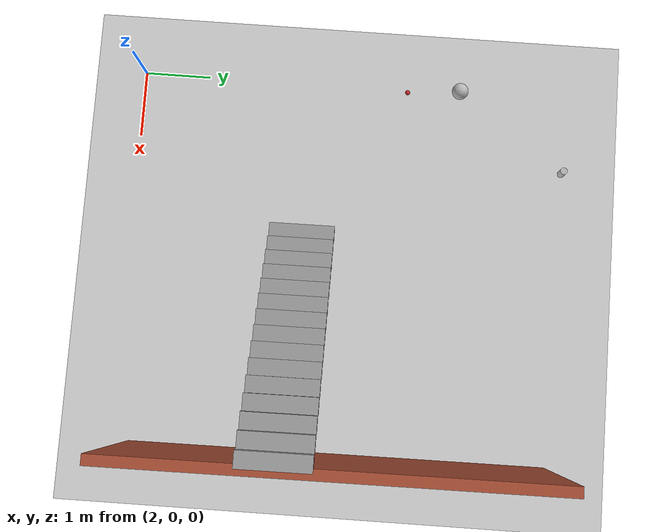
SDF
<sdf version="1.7">
 <world name="default">
  <model name="ground_plane">
   <static>1</static>
   <link name="link">
    <collision name="collision">
     <geometry><plane><normal>0 0 1</normal><size>100 100</size></plane></geometry>
     <surface><friction><ode><mu>100</mu><mu2>50</mu2></ode></friction></surface>
    </collision>
    <visual name="visual">
     <cast_shadows>0</cast_shadows>
     <geometry><plane><normal>0 0 1</normal><size>100 100</size></plane></geometry>
     <material>
      <script><uri>file://media/materials/scripts/gazebo.material</uri><name>Gazebo/Grey</name></script>
     </material>
    </visual>
   </link>
  </model>
  <light name="sun" type="directional">
   <pose>0 0 10 0 -0 0</pose>
   <diffuse>0.8 0.8 0.8 1</diffuse>
   <specular>0.2 0.2 0.2 1</specular>
   <attenuation>
    <range>1000</range>
    <constant>0.9</constant>
    <linear>0.01</linear>
    <quadratic>0.001</quadratic>
   </attenuation>
   <direction>-0.5 0.1 -0.9</direction>
   <spot><inner_angle>0</inner_angle><outer_angle>0</outer_angle><falloff>0</falloff></spot>
  </light>
  <gravity>0 0 -9.8</gravity>
  <magnetic_field>6e-06 2.3e-05 -4.2e-05</magnetic_field>
  <atmosphere type="adiabatic"/>
  <physics type="ode">
   <max_step_size>0.001</max_step_size>
   <real_time_factor>1</real_time_factor>
   <real_time_update_rate>1000</real_time_update_rate>
  </physics>
  <scene><ambient>0.4 0.4 0.4 1</ambient><background>0.7 0.7 0.7 1</background><shadows>1</shadows></scene>
  <spherical_coordinates>
   <surface_model>EARTH_WGS84</surface_model>
   <latitude_deg>0</latitude_deg>
   <longitude_deg>0</longitude_deg>
   <elevation>0</elevation>
   <heading_deg>0</heading_deg>
  </spherical_coordinates>
  <model name="stairs">
   <pose>6.04433 3.3771 0 0 -0 1.57612</pose>
   <link name="Stairs_1">
    <visual name="Stairs_1_Visual_0">
     <pose>-0.736939 1.6748 0.083333 0 -0 0</pose>
     <geometry><box><size>1 0.233333 0.166667</size></box></geometry>
     <material>
      <script><uri>file://media/materials/scripts/gazebo.material</uri><name>Gazebo/Grey</name></script>
      <ambient>1 1 1 1</ambient>
     </material>
     <meta><layer>0</layer></meta>
    </visual>
    <collision name="Stairs_1_Collision_0">
     <geometry><box><size>1 0.233333 0.166667</size></box></geometry>
     <pose>-0.736939 1.6748 0.083333 0 -0 0</pose>
    </collision>
    <visual name="Stairs_1_Visual_1">
     <pose>-0.736939 1.44146 0.25 0 -0 0</pose>
     <geometry><box><size>1 0.233333 0.166667</size></box></geometry>
     <material>
      <script><uri>file://media/materials/scripts/gazebo.material</uri><name>Gazebo/Grey</name></script>
      <ambient>1 1 1 1</ambient>
     </material>
     <meta><layer>0</layer></meta>
    </visual>
    <collision name="Stairs_1_Collision_1">
     <geometry><box><size>1 0.233333 0.166667</size></box></geometry>
     <pose>-0.736939 1.44146 0.25 0 -0 0</pose>
    </collision>
    <visual name="Stairs_1_Visual_2">
     <pose>-0.736939 1.20813 0.416667 0 -0 0</pose>
     <geometry><box><size>1 0.233333 0.166667</size></box></geometry>
     <material>
      <script><uri>file://media/materials/scripts/gazebo.material</uri><name>Gazebo/Grey</name></script>
      <ambient>1 1 1 1</ambient>
     </material>
     <meta><layer>0</layer></meta>
    </visual>
    <collision name="Stairs_1_Collision_2">
     <geometry><box><size>1 0.233333 0.166667</size></box></geometry>
     <pose>-0.736939 1.20813 0.416667 0 -0 0</pose>
    </collision>
    <visual name="Stairs_1_Visual_3">
     <pose>-0.736939 0.974796 0.583333 0 -0 0</pose>
     <geometry><box><size>1 0.233333 0.166667</size></box></geometry>
     <material>
      <script><uri>file://media/materials/scripts/gazebo.material</uri><name>Gazebo/Grey</name></script>
      <ambient>1 1 1 1</ambient>
     </material>
     <meta><layer>0</layer></meta>
    </visual>
    <collision name="Stairs_1_Collision_3">
     <geometry><box><size>1 0.233333 0.166667</size></box></geometry>
     <pose>-0.736939 0.974796 0.583333 0 -0 0</pose>
    </collision>
    <visual name="Stairs_1_Visual_4">
     <pose>-0.736939 0.741463 0.75 0 -0 0</pose>
     <geometry><box><size>1 0.233333 0.166667</size></box></geometry>
     <material>
      <script><uri>file://media/materials/scripts/gazebo.material</uri><name>Gazebo/Grey</name></script>
      <ambient>1 1 1 1</ambient>
     </material>
     <meta><layer>0</layer></meta>
    </visual>
    <collision name="Stairs_1_Collision_4">
     <geometry><box><size>1 0.233333 0.166667</size></box></geometry>
     <pose>-0.736939 0.741463 0.75 0 -0 0</pose>
    </collision>
    <visual name="Stairs_1_Visual_5">
     <pose>-0.736939 0.50813 0.916667 0 -0 0</pose>
     <geometry><box><size>1 0.233333 0.166667</size></box></geometry>
     <material>
      <script><uri>file://media/materials/scripts/gazebo.material</uri><name>Gazebo/Grey</name></script>
      <ambient>1 1 1 1</ambient>
     </material>
     <meta><layer>0</layer></meta>
    </visual>
    <collision name="Stairs_1_Collision_5">
     <geometry><box><size>1 0.233333 0.166667</size></box></geometry>
     <pose>-0.736939 0.50813 0.916667 0 -0 0</pose>
    </collision>
    <visual name="Stairs_1_Visual_6">
     <pose>-0.736939 0.274797 1.08333 0 -0 0</pose>
     <geometry><box><size>1 0.233333 0.166667</size></box></geometry>
     <material>
      <script><uri>file://media/materials/scripts/gazebo.material</uri><name>Gazebo/Grey</name></script>
      <ambient>1 1 1 1</ambient>
     </material>
     <meta><layer>0</layer></meta>
    </visual>
    <collision name="Stairs_1_Collision_6">
     <geometry><box><size>1 0.233333 0.166667</size></box></geometry>
     <pose>-0.736939 0.274797 1.08333 0 -0 0</pose>
    </collision>
    <visual name="Stairs_1_Visual_7">
     <pose>-0.736939 0.041463 1.25 0 -0 0</pose>
     <geometry><box><size>1 0.233333 0.166667</size></box></geometry>
     <material>
      <script><uri>file://media/materials/scripts/gazebo.material</uri><name>Gazebo/Grey</name></script>
      <ambient>1 1 1 1</ambient>
     </material>
     <meta><layer>0</layer></meta>
    </visual>
    <collision name="Stairs_1_Collision_7">
     <geometry><box><size>1 0.233333 0.166667</size></box></geometry>
     <pose>-0.736939 0.041463 1.25 0 -0 0</pose>
    </collision>
    <visual name="Stairs_1_Visual_8">
     <pose>-0.736939 -0.19187 1.41667 0 -0 0</pose>
     <geometry><box><size>1 0.233333 0.166667</size></box></geometry>
     <material>
      <script><uri>file://media/materials/scripts/gazebo.material</uri><name>Gazebo/Grey</name></script>
      <ambient>1 1 1 1</ambient>
     </material>
     <meta><layer>0</layer></meta>
    </visual>
    <collision name="Stairs_1_Collision_8">
     <geometry><box><size>1 0.233333 0.166667</size></box></geometry>
     <pose>-0.736939 -0.19187 1.41667 0 -0 0</pose>
    </collision>
    <visual name="Stairs_1_Visual_9">
     <pose>-0.736939 -0.425204 1.58333 0 -0 0</pose>
     <geometry><box><size>1 0.233333 0.166667</size></box></geometry>
     <material>
      <script><uri>file://media/materials/scripts/gazebo.material</uri><name>Gazebo/Grey</name></script>
      <ambient>1 1 1 1</ambient>
     </material>
     <meta><layer>0</layer></meta>
    </visual>
    <collision name="Stairs_1_Collision_9">
     <geometry><box><size>1 0.233333 0.166667</size></box></geometry>
     <pose>-0.736939 -0.425204 1.58333 0 -0 0</pose>
    </collision>
    <visual name="Stairs_1_Visual_10">
     <pose>-0.736939 -0.658537 1.75 0 -0 0</pose>
     <geometry><box><size>1 0.233333 0.166667</size></box></geometry>
     <material>
      <script><uri>file://media/materials/scripts/gazebo.material</uri><name>Gazebo/Grey</name></script>
      <ambient>1 1 1 1</ambient>
     </material>
     <meta><layer>0</layer></meta>
    </visual>
    <collision name="Stairs_1_Collision_10">
     <geometry><box><size>1 0.233333 0.166667</size></box></geometry>
     <pose>-0.736939 -0.658537 1.75 0 -0 0</pose>
    </collision>
    <visual name="Stairs_1_Visual_11">
     <pose>-0.736939 -0.89187 1.91667 0 -0 0</pose>
     <geometry><box><size>1 0.233333 0.166667</size></box></geometry>
     <material>
      <script><uri>file://media/materials/scripts/gazebo.material</uri><name>Gazebo/Grey</name></script>
      <ambient>1 1 1 1</ambient>
     </material>
     <meta><layer>0</layer></meta>
    </visual>
    <collision name="Stairs_1_Collision_11">
     <geometry><box><size>1 0.233333 0.166667</size></box></geometry>
     <pose>-0.736939 -0.89187 1.91667 0 -0 0</pose>
    </collision>
    <visual name="Stairs_1_Visual_12">
     <pose>-0.736939 -1.1252 2.08333 0 -0 0</pose>
     <geometry><box><size>1 0.233333 0.166667</size></box></geometry>
     <material>
      <script><uri>file://media/materials/scripts/gazebo.material</uri><name>Gazebo/Grey</name></script>
      <ambient>1 1 1 1</ambient>
     </material>
     <meta><layer>0</layer></meta>
    </visual>
    <collision name="Stairs_1_Collision_12">
     <geometry><box><size>1 0.233333 0.166667</size></box></geometry>
     <pose>-0.736939 -1.1252 2.08333 0 -0 0</pose>
    </collision>
    <visual name="Stairs_1_Visual_13">
     <pose>-0.736939 -1.35854 2.25 0 -0 0</pose>
     <geometry><box><size>1 0.233333 0.166667</size></box></geometry>
     <material>
      <script><uri>file://media/materials/scripts/gazebo.material</uri><name>Gazebo/Grey</name></script>
      <ambient>1 1 1 1</ambient>
     </material>
     <meta><layer>0</layer></meta>
    </visual>
    <collision name="Stairs_1_Collision_13">
     <geometry><box><size>1 0.233333 0.166667</size></box></geometry>
     <pose>-0.736939 -1.35854 2.25 0 -0 0</pose>
    </collision>
    <visual name="Stairs_1_Visual_14">
     <pose>-0.736939 -1.59187 2.41667 0 -0 0</pose>
     <geometry><box><size>1 0.233333 0.166667</size></box></geometry>
     <material>
      <script><uri>file://media/materials/scripts/gazebo.material</uri><name>Gazebo/Grey</name></script>
      <ambient>1 1 1 1</ambient>
     </material>
     <meta><layer>0</layer></meta>
    </visual>
    <collision name="Stairs_1_Collision_14">
     <geometry><box><size>1 0.233333 0.166667</size></box></geometry>
     <pose>-0.736939 -1.59187 2.41667 0 -0 0</pose>
    </collision>
   </link>
   <link name="Wall_7">
    <collision name="Wall_7_Collision">
     <geometry><box><size>6.25 0.15 2.5</size></box></geometry>
     <pose>0 0 1.25 0 -0 0</pose>
    </collision>
    <visual name="Wall_7_Visual">
     <pose>0 0 1.25 0 -0 0</pose>
     <geometry><box><size>6.25 0.15 2.5</size></box></geometry>
     <material>
      <script><uri>file://media/materials/scripts/gazebo.material</uri><name>Gazebo/Bricks</name></script>
      <ambient>1 1 1 1</ambient>
     </material>
     <meta><layer>0</layer></meta>
    </visual>
    <pose>0 -1.71646 0 0 -0 0</pose>
   </link>
   <static>1</static>
  </model>
  <model name="frc2016_ball">
   <pose>1.98556 4.93259 0.127 0 -0 0</pose>
   <link name="link">
    <inertial>
     <mass>0.213</mass>
     <inertia>
      <ixx>0.00322667</ixx>
      <ixy>0</ixy>
      <ixz>0</ixz>
      <iyy>0.00322667</iyy>
      <iyz>0</iyz>
      <izz>0.00322667</izz>
     </inertia>
    </inertial>
    <visual name="visual"><geometry><sphere><radius>0.127</radius></sphere></geometry></visual>
    <collision name="collision">
     <geometry><sphere><radius>0.127</radius></sphere></geometry>
     <surface>
      <bounce><restitution_coefficient>0.15937</restitution_coefficient><threshold>0</threshold></bounce>
      <contact><ode><max_vel>100</max_vel><min_depth>0.001</min_depth></ode></contact>
     </surface>
    </collision>
   </link>
  </model>
  <model name="beer">
   <link name="link">
    <pose>0 0 0.115 0 -0 0</pose>
    <inertial>
     <mass>0.39</mass>
     <inertia><ixx>0.00058</ixx><ixy>0</ixy><ixz>0</ixz><iyy>0.00058</iyy><iyz>0</iyz><izz>0.00019</izz></inertia>
    </inertial>
    <collision name="collision">
     <geometry><cylinder><radius>0.055</radius><length>0.23</length></cylinder></geometry>
    </collision>
    <visual name="visual">
     <geometry><cylinder><radius>0.055</radius><length>0.23</length></cylinder></geometry>
     <material>
      <script>
       <uri>model://beer/materials/scripts</uri>
       <uri>model://beer/materials/textures</uri>
       <name>Beer/Diffuse</name>
      </script>
     </material>
    </visual>
   </link>
   <pose>3.1628 6.57992 -2e-06 1e-06 -0 -3e-06</pose>
  </model>
  <model name="cricket_ball">
   <link name="link">
    <pose>0 0 0.0375 0 -0 0</pose>
    <inertial>
     <mass>0.1467</mass>
     <inertia>
      <ixx>8.25187e-05</ixx>
      <ixy>0</ixy>
      <ixz>0</ixz>
      <iyy>8.25187e-05</iyy>
      <iyz>0</iyz>
      <izz>8.25187e-05</izz>
     </inertia>
    </inertial>
    <collision name="collision">
     <geometry><sphere><radius>0.0375</radius></sphere></geometry>
     <surface>
      <contact>
       <poissons_ratio>0.347</poissons_ratio>
       <elastic_modulus>8.8e+09</elastic_modulus>
       <ode><kp>100000</kp><kd>100</kd><max_vel>100</max_vel><min_depth>0.001</min_depth></ode>
      </contact>
      <friction>
       <torsional>
        <coefficient>1</coefficient>
        <use_patch_radius>0</use_patch_radius>
        <surface_radius>0.01</surface_radius>
       </torsional>
      </friction>
     </surface>
    </collision>
    <visual name="visual">
     <geometry><sphere><radius>0.0375</radius></sphere></geometry>
     <material>
      <script><uri>file://media/materials/scripts/gazebo.material</uri><name>Gazebo/Red</name></script>
     </material>
    </visual>
    <velocity_decay><linear>0</linear><angular>0.005</angular></velocity_decay>
   </link>
   <pose>2.0353 4.1192 -0.001014 0 -0 0</pose>
  </model>
  <plugin name="gazebo_ros_force_system" filename="libgazebo_ros_force_system.so"/>
 </world>
</sdf>
